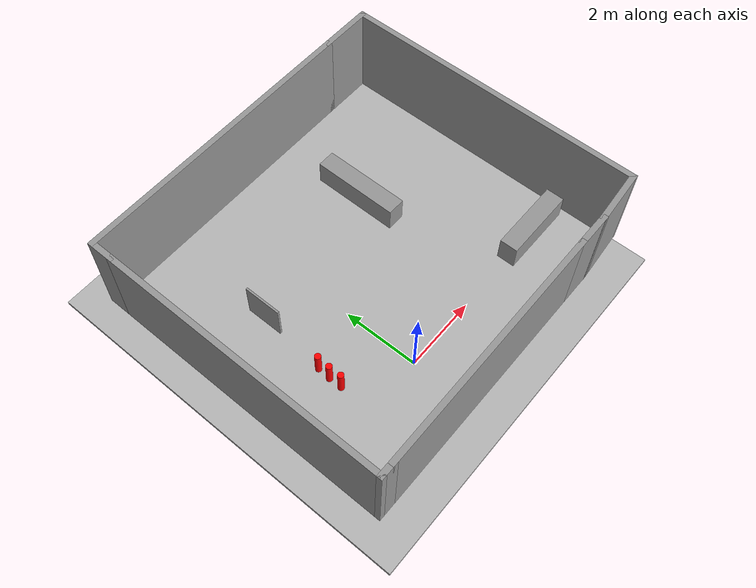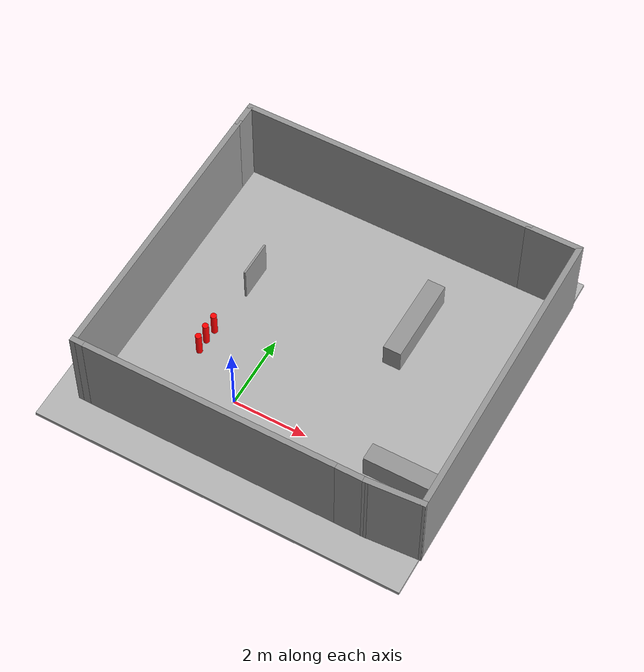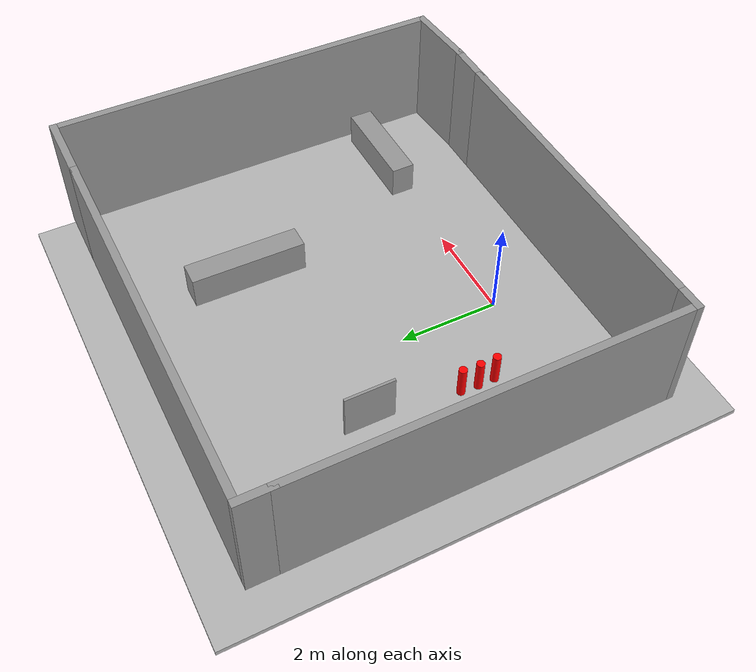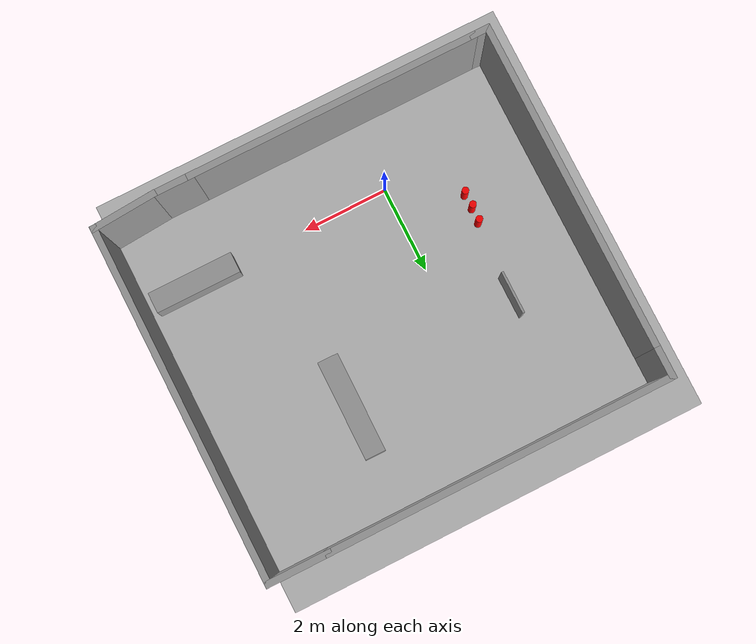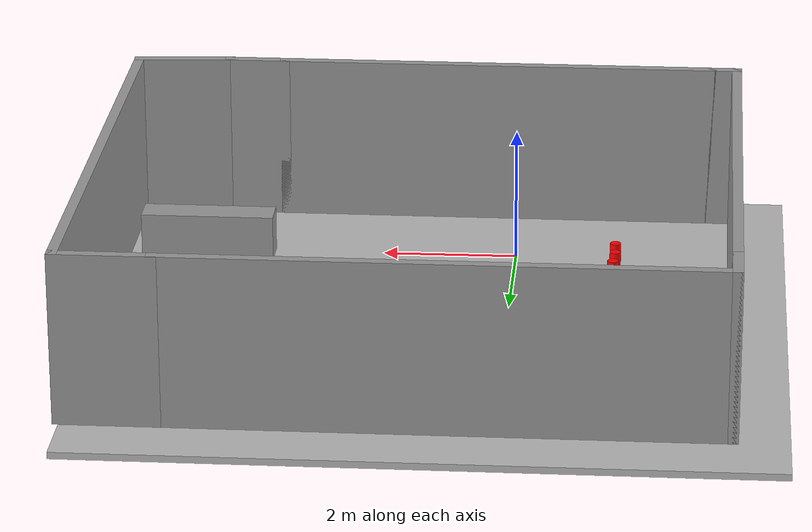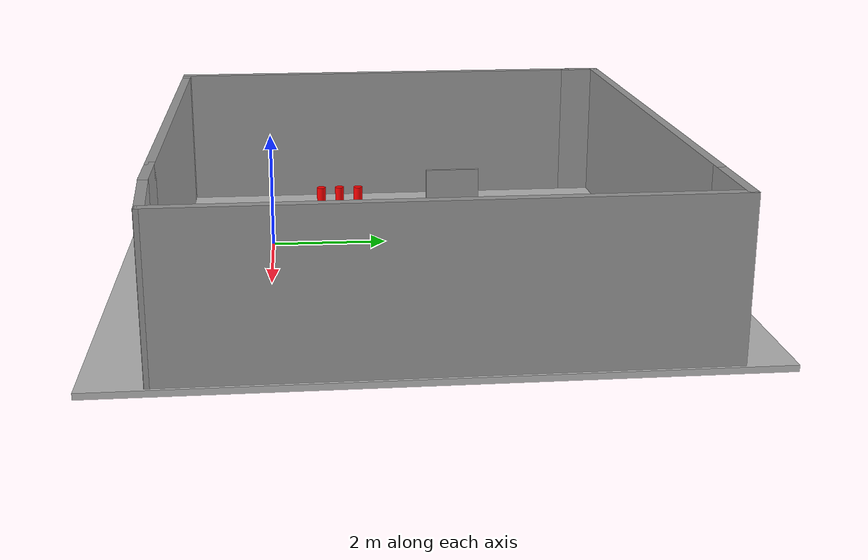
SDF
<sdf version="1.6">
 <world name="default">
  <scene>
   <ambient>0 0 0 1</ambient>
   <shadows>0</shadows>
   <grid>0</grid>
   <background>0.7 0.7 0.7 1</background>
  </scene>
  <model name="ground">
   <pose>0.934195 2.40042 -0.1 0 -0 0</pose>
   <static>1</static>
   <link name="ground">
    <collision name="ground_coll"><geometry><box><size>10 10 0.1</size></box></geometry></collision>
    <visual name="ground_vis">
     <geometry><box><size>10 10 0.1</size></box></geometry>
     <material>
      <script>
       <uri>file:///home/jkc1/412/catkin_ws/src/demo5/resources/course.material</uri>
       <name>course</name>
      </script>
     </material>
    </visual>
   </link>
  </model>
  <gravity>0 0 -9.8</gravity>
  <magnetic_field>6e-06 2.3e-05 -4.2e-05</magnetic_field>
  <atmosphere type="adiabatic"/>
  <physics name="default_physics" default="0" type="ode">
   <max_step_size>0.001</max_step_size>
   <real_time_factor>1</real_time_factor>
   <real_time_update_rate>1000</real_time_update_rate>
  </physics>
  <spherical_coordinates>
   <surface_model>EARTH_WGS84</surface_model>
   <latitude_deg>0</latitude_deg>
   <longitude_deg>0</longitude_deg>
   <elevation>0</elevation>
   <heading_deg>0</heading_deg>
  </spherical_coordinates>
  <model name="unit_box_clone_clone">
   <link name="link">
    <inertial>
     <mass>1</mass>
     <inertia>
      <ixx>0.166667</ixx>
      <ixy>0</ixy>
      <ixz>0</ixz>
      <iyy>0.166667</iyy>
      <iyz>0</iyz>
      <izz>0.166667</izz>
     </inertia>
    </inertial>
    <visual name="visual">
     <geometry><box><size>2.33738 0.481233 0.678293</size></box></geometry>
     <material>
      <script><name>Gazebo/Grey</name><uri>file://media/materials/scripts/gazebo.material</uri></script>
      <shader type="pixel"><normal_map>__default__</normal_map></shader>
      <ambient>0.3 0.3 0.3 1</ambient>
      <diffuse>0.7 0.7 0.7 1</diffuse>
      <specular>0.01 0.01 0.01 1</specular>
      <emissive>0 0 0 1</emissive>
     </material>
    </visual>
    <collision name="collision">
     <geometry><box><size>2.33738 0.481233 0.678293</size></box></geometry>
     <surface>
      <friction>
       <ode><mu>1</mu><mu2>1</mu2><fdir1>0 0 0</fdir1><slip1>0</slip1><slip2>0</slip2></ode>
       <torsional>
        <coefficient>1</coefficient>
        <patch_radius>0</patch_radius>
        <surface_radius>0</surface_radius>
        <use_patch_radius>1</use_patch_radius>
        <ode><slip>0</slip></ode>
       </torsional>
      </friction>
      <bounce><restitution_coefficient>0</restitution_coefficient><threshold>1e+06</threshold></bounce>
      <contact>
       <collide_without_contact>0</collide_without_contact>
       <collide_without_contact_bitmask>1</collide_without_contact_bitmask>
       <collide_bitmask>1</collide_bitmask>
       <ode>
        <soft_cfm>0</soft_cfm>
        <soft_erp>0.2</soft_erp>
        <kp>1e+13</kp>
        <kd>1</kd>
        <max_vel>0.01</max_vel>
        <min_depth>0</min_depth>
       </ode>
       <bullet>
        <split_impulse>1</split_impulse>
        <split_impulse_penetration_threshold>-0.01</split_impulse_penetration_threshold>
        <soft_cfm>0</soft_cfm>
        <soft_erp>0.2</soft_erp>
        <kp>1e+13</kp>
        <kd>1</kd>
       </bullet>
      </contact>
     </surface>
    </collision>
   </link>
   <static>0</static>
   <pose>2.83743 3.99729 0.289147 -2e-06 0 -1.57693</pose>
  </model>
  <model name="unit_box_clone_0">
   <link name="link">
    <inertial>
     <mass>1</mass>
     <inertia>
      <ixx>0.166667</ixx>
      <ixy>0</ixy>
      <ixz>0</ixz>
      <iyy>0.166667</iyy>
      <iyz>0</iyz>
      <izz>0.166667</izz>
     </inertia>
    </inertial>
    <visual name="visual">
     <geometry><box><size>2.00263 0.481233 0.678293</size></box></geometry>
     <material>
      <script><name>Gazebo/Grey</name><uri>file://media/materials/scripts/gazebo.material</uri></script>
      <shader type="pixel"><normal_map>__default__</normal_map></shader>
      <ambient>0.3 0.3 0.3 1</ambient>
      <diffuse>0.7 0.7 0.7 1</diffuse>
      <specular>0.01 0.01 0.01 1</specular>
      <emissive>0 0 0 1</emissive>
     </material>
    </visual>
    <collision name="collision">
     <geometry><box><size>2.00263 0.481233 0.678293</size></box></geometry>
     <surface>
      <friction>
       <ode><mu>1</mu><mu2>1</mu2><fdir1>0 0 0</fdir1><slip1>0</slip1><slip2>0</slip2></ode>
       <torsional>
        <coefficient>1</coefficient>
        <patch_radius>0</patch_radius>
        <surface_radius>0</surface_radius>
        <use_patch_radius>1</use_patch_radius>
        <ode><slip>0</slip></ode>
       </torsional>
      </friction>
      <bounce><restitution_coefficient>0</restitution_coefficient><threshold>1e+06</threshold></bounce>
      <contact>
       <collide_without_contact>0</collide_without_contact>
       <collide_without_contact_bitmask>1</collide_without_contact_bitmask>
       <collide_bitmask>1</collide_bitmask>
       <ode>
        <soft_cfm>0</soft_cfm>
        <soft_erp>0.2</soft_erp>
        <kp>1e+13</kp>
        <kd>1</kd>
        <max_vel>0.01</max_vel>
        <min_depth>0</min_depth>
       </ode>
       <bullet>
        <split_impulse>1</split_impulse>
        <split_impulse_penetration_threshold>-0.01</split_impulse_penetration_threshold>
        <soft_cfm>0</soft_cfm>
        <soft_erp>0.2</soft_erp>
        <kp>1e+13</kp>
        <kd>1</kd>
       </bullet>
      </contact>
     </surface>
    </collision>
   </link>
   <static>0</static>
   <pose>4.68012 0.033655 0.289147 -2e-06 0 -2.5e-05</pose>
  </model>
  <model name="red_cylinder">
   <link name="link">
    <inertial>
     <mass>1</mass>
     <inertia><ixx>0.145833</ixx><ixy>0</ixy><ixz>0</ixz><iyy>0.145833</iyy><iyz>0</iyz><izz>0.125</izz></inertia>
    </inertial>
    <visual name="visual">
     <geometry><cylinder><radius>0.0811909</radius><length>0.665165</length></cylinder></geometry>
     <material>
      <script><name>Gazebo/Grey</name><uri>file://media/materials/scripts/gazebo.material</uri></script>
      <shader type="pixel"><normal_map>__default__</normal_map></shader>
      <ambient>1 0 0 1</ambient>
      <diffuse>1 0 0 1</diffuse>
      <specular>0.01 0.01 0.01 1</specular>
      <emissive>0 0 0 1</emissive>
     </material>
    </visual>
    <collision name="collision">
     <geometry><cylinder><radius>0.081191</radius><length>0.665165</length></cylinder></geometry>
     <surface>
      <friction>
       <ode><mu>1</mu><mu2>1</mu2><fdir1>0 0 0</fdir1><slip1>0</slip1><slip2>0</slip2></ode>
       <torsional>
        <coefficient>1</coefficient>
        <patch_radius>0</patch_radius>
        <surface_radius>0</surface_radius>
        <use_patch_radius>1</use_patch_radius>
        <ode><slip>0</slip></ode>
       </torsional>
      </friction>
      <bounce><restitution_coefficient>0</restitution_coefficient><threshold>1e+06</threshold></bounce>
      <contact>
       <collide_without_contact>0</collide_without_contact>
       <collide_without_contact_bitmask>1</collide_without_contact_bitmask>
       <collide_bitmask>1</collide_bitmask>
       <ode>
        <soft_cfm>0</soft_cfm>
        <soft_erp>0.2</soft_erp>
        <kp>1e+13</kp>
        <kd>1</kd>
        <max_vel>0.01</max_vel>
        <min_depth>0</min_depth>
       </ode>
       <bullet>
        <split_impulse>1</split_impulse>
        <split_impulse_penetration_threshold>-0.01</split_impulse_penetration_threshold>
        <soft_cfm>0</soft_cfm>
        <soft_erp>0.2</soft_erp>
        <kp>1e+13</kp>
        <kd>1</kd>
       </bullet>
      </contact>
     </surface>
    </collision>
   </link>
   <static>0</static>
   <pose>-1.50981 1.60222 0.282579 6.7e-05 -4.5e-05 0.000942</pose>
  </model>
  <model name="red_cylinder_clone">
   <link name="link">
    <inertial>
     <mass>1</mass>
     <inertia><ixx>0.145833</ixx><ixy>0</ixy><ixz>0</ixz><iyy>0.145833</iyy><iyz>0</iyz><izz>0.125</izz></inertia>
    </inertial>
    <visual name="visual">
     <geometry><cylinder><radius>0.0811909</radius><length>0.665165</length></cylinder></geometry>
     <material>
      <script><name>Gazebo/Grey</name><uri>file://media/materials/scripts/gazebo.material</uri></script>
      <shader type="pixel"><normal_map>__default__</normal_map></shader>
      <ambient>1 0 0 1</ambient>
      <diffuse>1 0 0 1</diffuse>
      <specular>0.01 0.01 0.01 1</specular>
      <emissive>0 0 0 1</emissive>
     </material>
    </visual>
    <collision name="collision">
     <geometry><cylinder><radius>0.081191</radius><length>0.665165</length></cylinder></geometry>
     <surface>
      <friction>
       <ode><mu>1</mu><mu2>1</mu2><fdir1>0 0 0</fdir1><slip1>0</slip1><slip2>0</slip2></ode>
       <torsional>
        <coefficient>1</coefficient>
        <patch_radius>0</patch_radius>
        <surface_radius>0</surface_radius>
        <use_patch_radius>1</use_patch_radius>
        <ode><slip>0</slip></ode>
       </torsional>
      </friction>
      <bounce><restitution_coefficient>0</restitution_coefficient><threshold>1e+06</threshold></bounce>
      <contact>
       <collide_without_contact>0</collide_without_contact>
       <collide_without_contact_bitmask>1</collide_without_contact_bitmask>
       <collide_bitmask>1</collide_bitmask>
       <ode>
        <soft_cfm>0</soft_cfm>
        <soft_erp>0.2</soft_erp>
        <kp>1e+13</kp>
        <kd>1</kd>
        <max_vel>0.01</max_vel>
        <min_depth>0</min_depth>
       </ode>
       <bullet>
        <split_impulse>1</split_impulse>
        <split_impulse_penetration_threshold>-0.01</split_impulse_penetration_threshold>
        <soft_cfm>0</soft_cfm>
        <soft_erp>0.2</soft_erp>
        <kp>1e+13</kp>
        <kd>1</kd>
       </bullet>
      </contact>
     </surface>
    </collision>
   </link>
   <static>0</static>
   <pose>-1.53236 1.24913 0.28258 7e-05 -4.9e-05 0.000921</pose>
  </model>
  <model name="red_cylinder_clone_0">
   <link name="link">
    <inertial>
     <mass>1</mass>
     <inertia><ixx>0.145833</ixx><ixy>0</ixy><ixz>0</ixz><iyy>0.145833</iyy><iyz>0</iyz><izz>0.125</izz></inertia>
    </inertial>
    <visual name="visual">
     <geometry><cylinder><radius>0.0811909</radius><length>0.665165</length></cylinder></geometry>
     <material>
      <script><name>Gazebo/Grey</name><uri>file://media/materials/scripts/gazebo.material</uri></script>
      <shader type="pixel"><normal_map>__default__</normal_map></shader>
      <ambient>1 0 0 1</ambient>
      <diffuse>1 0 0 1</diffuse>
      <specular>0.01 0.01 0.01 1</specular>
      <emissive>0 0 0 1</emissive>
     </material>
    </visual>
    <collision name="collision">
     <geometry><cylinder><radius>0.081191</radius><length>0.665165</length></cylinder></geometry>
     <surface>
      <friction>
       <ode><mu>1</mu><mu2>1</mu2><fdir1>0 0 0</fdir1><slip1>0</slip1><slip2>0</slip2></ode>
       <torsional>
        <coefficient>1</coefficient>
        <patch_radius>0</patch_radius>
        <surface_radius>0</surface_radius>
        <use_patch_radius>1</use_patch_radius>
        <ode><slip>0</slip></ode>
       </torsional>
      </friction>
      <bounce><restitution_coefficient>0</restitution_coefficient><threshold>1e+06</threshold></bounce>
      <contact>
       <collide_without_contact>0</collide_without_contact>
       <collide_without_contact_bitmask>1</collide_without_contact_bitmask>
       <collide_bitmask>1</collide_bitmask>
       <ode>
        <soft_cfm>0</soft_cfm>
        <soft_erp>0.2</soft_erp>
        <kp>1e+13</kp>
        <kd>1</kd>
        <max_vel>0.01</max_vel>
        <min_depth>0</min_depth>
       </ode>
       <bullet>
        <split_impulse>1</split_impulse>
        <split_impulse_penetration_threshold>-0.01</split_impulse_penetration_threshold>
        <soft_cfm>0</soft_cfm>
        <soft_erp>0.2</soft_erp>
        <kp>1e+13</kp>
        <kd>1</kd>
       </bullet>
      </contact>
     </surface>
    </collision>
   </link>
   <static>0</static>
   <pose>-1.52742 0.902503 0.282579 6.6e-05 -4.4e-05 0.000941</pose>
  </model>
  <model name="white_board">
   <link name="link">
    <inertial>
     <mass>1</mass>
     <inertia>
      <ixx>0.166667</ixx>
      <ixy>0</ixy>
      <ixz>0</ixz>
      <iyy>0.166667</iyy>
      <iyz>0</iyz>
      <izz>0.166667</izz>
     </inertia>
    </inertial>
    <visual name="visual">
     <geometry><box><size>0.052831 1 1</size></box></geometry>
     <material>
      <script><name>Gazebo/Grey</name><uri>file://media/materials/scripts/gazebo.material</uri></script>
      <shader type="pixel"><normal_map>__default__</normal_map></shader>
      <ambient>1 1 1 1</ambient>
      <diffuse>1 1 1 1</diffuse>
      <specular>0.01 0.01 0.01 1</specular>
      <emissive>0 0 0 1</emissive>
     </material>
    </visual>
    <collision name="collision">
     <geometry><box><size>0.052831 1 1</size></box></geometry>
     <surface>
      <friction>
       <ode><mu>1</mu><mu2>1</mu2><fdir1>0 0 0</fdir1><slip1>0</slip1><slip2>0</slip2></ode>
       <torsional>
        <coefficient>1</coefficient>
        <patch_radius>0</patch_radius>
        <surface_radius>0</surface_radius>
        <use_patch_radius>1</use_patch_radius>
        <ode><slip>0</slip></ode>
       </torsional>
      </friction>
      <bounce><restitution_coefficient>0</restitution_coefficient><threshold>1e+06</threshold></bounce>
      <contact>
       <collide_without_contact>0</collide_without_contact>
       <collide_without_contact_bitmask>1</collide_without_contact_bitmask>
       <collide_bitmask>1</collide_bitmask>
       <ode>
        <soft_cfm>0</soft_cfm>
        <soft_erp>0.2</soft_erp>
        <kp>1e+13</kp>
        <kd>1</kd>
        <max_vel>0.01</max_vel>
        <min_depth>0</min_depth>
       </ode>
       <bullet>
        <split_impulse>1</split_impulse>
        <split_impulse_penetration_threshold>-0.01</split_impulse_penetration_threshold>
        <soft_cfm>0</soft_cfm>
        <soft_erp>0.2</soft_erp>
        <kp>1e+13</kp>
        <kd>1</kd>
       </bullet>
      </contact>
     </surface>
    </collision>
   </link>
   <static>0</static>
   <pose>-1.37418 3.40044 0.45 0 -1e-06 2.5e-05</pose>
  </model>
  <model name="walls">
   <pose>1.32258 2.42742 0 0 -0 0</pose>
   <link name="Wall_10">
    <collision name="Wall_10_Collision">
     <geometry><box><size>0.5 0.15 2.5</size></box></geometry>
     <pose>0 0 1.25 0 -0 0</pose>
    </collision>
    <visual name="Wall_10_Visual">
     <pose>0 0 1.25 0 -0 0</pose>
     <geometry><box><size>0.5 0.15 2.5</size></box></geometry>
     <material>
      <script><uri>file://media/materials/scripts/gazebo.material</uri><name>Gazebo/Grey</name></script>
      <ambient>1 1 1 1</ambient>
     </material>
     <meta><layer>0</layer></meta>
    </visual>
    <pose>-4.42758 -4.09742 0 0 -0 3.14159</pose>
   </link>
   <link name="Wall_11">
    <collision name="Wall_11_Collision">
     <geometry><box><size>7.75 0.15 2.5</size></box></geometry>
     <pose>0 0 1.25 0 -0 0</pose>
    </collision>
    <visual name="Wall_11_Visual">
     <pose>0 0 1.25 0 -0 0</pose>
     <geometry><box><size>7.75 0.15 2.5</size></box></geometry>
     <material>
      <script><uri>file://media/materials/scripts/gazebo.material</uri><name>Gazebo/Grey</name></script>
      <ambient>1 1 1 1</ambient>
     </material>
     <meta><layer>0</layer></meta>
    </visual>
    <pose>-4.60258 -0.297424 0 0 -0 1.5708</pose>
   </link>
   <link name="Wall_13">
    <collision name="Wall_13_Collision">
     <geometry><box><size>0.75 0.15 2.5</size></box></geometry>
     <pose>0 0 1.25 0 -0 0</pose>
    </collision>
    <visual name="Wall_13_Visual">
     <pose>0 0 1.25 0 -0 0</pose>
     <geometry><box><size>0.75 0.15 2.5</size></box></geometry>
     <material>
      <script><uri>file://media/materials/scripts/gazebo.material</uri><name>Gazebo/Grey</name></script>
      <ambient>1 1 1 1</ambient>
     </material>
     <meta><layer>0</layer></meta>
    </visual>
    <pose>-4.60258 3.80258 0 0 -0 1.5708</pose>
   </link>
   <link name="Wall_14">
    <collision name="Wall_14_Collision">
     <geometry><box><size>8 0.15 2.5</size></box></geometry>
     <pose>0 0 1.25 0 -0 0</pose>
    </collision>
    <visual name="Wall_14_Visual">
     <pose>0 0 1.25 0 -0 0</pose>
     <geometry><box><size>8 0.15 2.5</size></box></geometry>
     <material>
      <script><uri>file://media/materials/scripts/gazebo.material</uri><name>Gazebo/Grey</name></script>
      <ambient>1 1 1 1</ambient>
     </material>
     <meta><layer>0</layer></meta>
    </visual>
    <pose>-0.677576 4.10258 0 0 -0 0</pose>
   </link>
   <link name="Wall_16">
    <collision name="Wall_16_Collision">
     <geometry><box><size>1.5 0.15 2.5</size></box></geometry>
     <pose>0 0 1.25 0 -0 0</pose>
    </collision>
    <visual name="Wall_16_Visual">
     <pose>0 0 1.25 0 -0 0</pose>
     <geometry><box><size>1.5 0.15 2.5</size></box></geometry>
     <material>
      <script><uri>file://media/materials/scripts/gazebo.material</uri><name>Gazebo/Grey</name></script>
      <ambient>1 1 1 1</ambient>
     </material>
     <meta><layer>0</layer></meta>
    </visual>
    <pose>3.92242 4.10258 0 0 -0 0</pose>
   </link>
   <link name="Wall_17">
    <collision name="Wall_17_Collision">
     <geometry><box><size>8.25 0.15 2.5</size></box></geometry>
     <pose>0 0 1.25 0 -0 0</pose>
    </collision>
    <visual name="Wall_17_Visual">
     <pose>0 0 1.25 0 -0 0</pose>
     <geometry><box><size>8.25 0.15 2.5</size></box></geometry>
     <material>
      <script><uri>file://media/materials/scripts/gazebo.material</uri><name>Gazebo/Grey</name></script>
      <ambient>1 1 1 1</ambient>
     </material>
     <meta><layer>0</layer></meta>
    </visual>
    <pose>4.59742 0.052576 0 0 0 -1.5708</pose>
   </link>
   <link name="Wall_18">
    <collision name="Wall_18_Collision">
     <geometry><box><size>1.55357 0.15 2.5</size></box></geometry>
     <pose>0 0 1.25 0 -0 0</pose>
    </collision>
    <visual name="Wall_18_Visual">
     <pose>0 0 1.25 0 -0 0</pose>
     <geometry><box><size>1.55357 0.15 2.5</size></box></geometry>
     <material>
      <script><uri>file://media/materials/scripts/gazebo.material</uri><name>Gazebo/Grey</name></script>
      <ambient>1 1 1 1</ambient>
     </material>
     <meta><layer>0</layer></meta>
    </visual>
    <pose>3.89742 -4.04742 0 0 0 -3.07029</pose>
   </link>
   <link name="Wall_3">
    <collision name="Wall_3_Collision">
     <geometry><box><size>6.75 0.15 2.5</size></box></geometry>
     <pose>0 0 1.25 0 -0 0</pose>
    </collision>
    <visual name="Wall_3_Visual">
     <pose>0 0 1.25 0 -0 0</pose>
     <geometry><box><size>6.75 0.15 2.5</size></box></geometry>
     <material>
      <script><uri>file://media/materials/scripts/gazebo.material</uri><name>Gazebo/Grey</name></script>
      <ambient>1 1 1 1</ambient>
     </material>
     <meta><layer>0</layer></meta>
    </visual>
    <pose>-0.952576 -4.09742 0 0 -0 0</pose>
   </link>
   <link name="Wall_4">
    <collision name="Wall_4_Collision">
     <geometry><box><size>1 0.15 2.5</size></box></geometry>
     <pose>0 0 1.25 0 -0 0</pose>
    </collision>
    <visual name="Wall_4_Visual">
     <pose>0 0 1.25 0 -0 0</pose>
     <geometry><box><size>1 0.15 2.5</size></box></geometry>
     <material>
      <script><uri>file://media/materials/scripts/gazebo.material</uri><name>Gazebo/Grey</name></script>
      <ambient>1 1 1 1</ambient>
     </material>
     <meta><layer>0</layer></meta>
    </visual>
    <pose>2.77242 -4.09742 0 0 -0 0</pose>
   </link>
   <static>1</static>
  </model>
  <light name="user_point_light_0" type="point">
   <pose>2.82071 3.8007 1 0 -0 0</pose>
   <diffuse>0.5 0.5 0.5 1</diffuse>
   <specular>0.1 0.1 0.1 1</specular>
   <attenuation>
    <range>20</range>
    <constant>0.5</constant>
    <linear>0.01</linear>
    <quadratic>0.001</quadratic>
   </attenuation>
   <cast_shadows>0</cast_shadows>
   <direction>0 0 -1</direction>
  </light>
  <light name="user_point_light_1" type="point">
   <pose>-2.08798 2.19687 1 0 -0 0</pose>
   <diffuse>0.5 0.5 0.5 1</diffuse>
   <specular>0.1 0.1 0.1 1</specular>
   <attenuation>
    <range>20</range>
    <constant>0.5</constant>
    <linear>0.01</linear>
    <quadratic>0.001</quadratic>
   </attenuation>
   <cast_shadows>0</cast_shadows>
   <direction>0 0 -1</direction>
  </light>
 </world>
</sdf>
